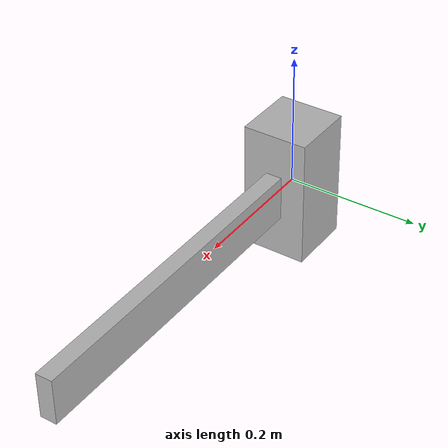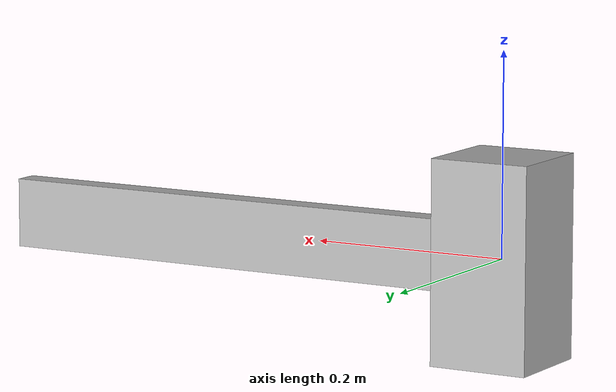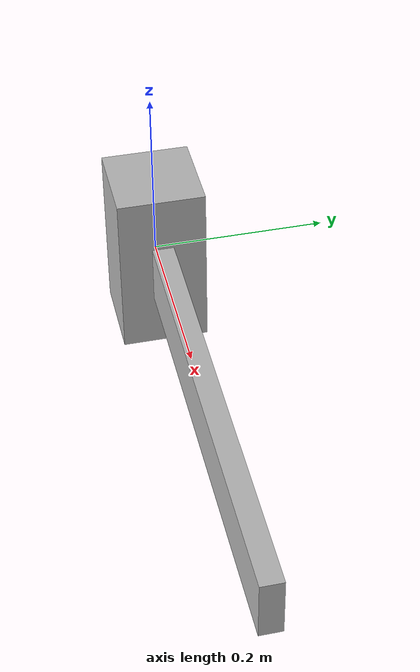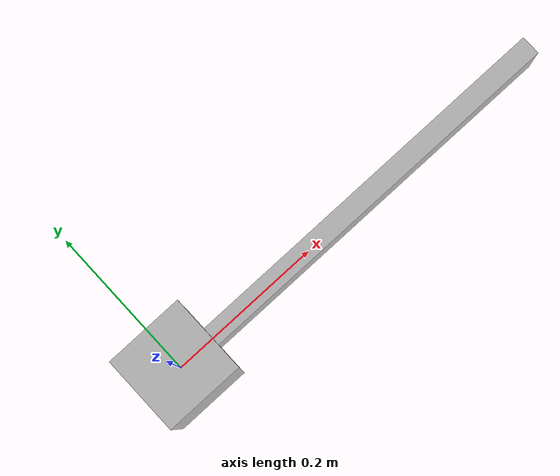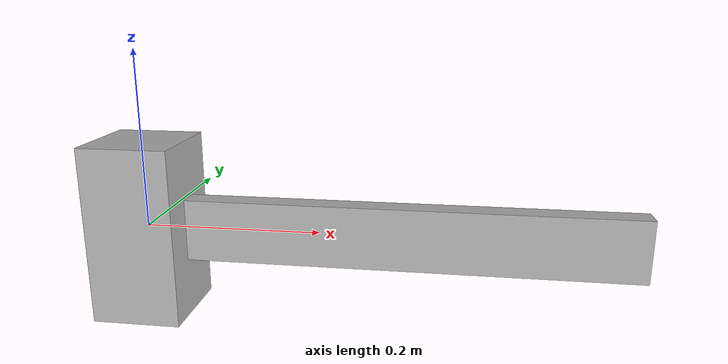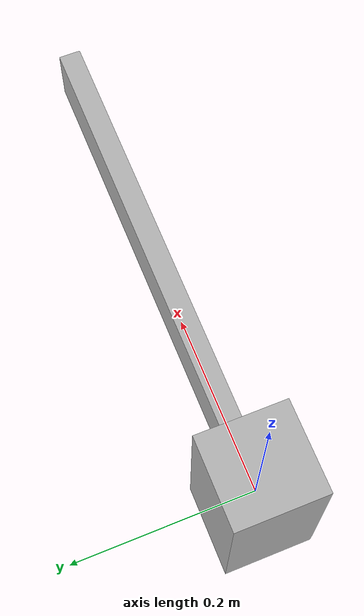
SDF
<?xml version='1.0'?>
<sdf version='1.6'>
  <model name='toll'>
   <link name='toll_base'>
    <visual name='visual'>
      <geometry>
        <box>
          <size>0.1 0.1 0.2</size>
        </box>
      </geometry>
    </visual>
   </link>

  <joint name="toll_joint" type="revolute">
     <parent>toll_base</parent>
     <child>toll_mobile</child>
     <pose frame=''>-0.25 0 0 0 0 0</pose>
     <axis>
      <xyz>0 1 0 </xyz>
      <limit>
        <lower>0</lower>
        <upper>1.57</upper>
        <velocity>1</velocity>
        <effort>5</effort>
      </limit>
      </axis>
    </joint>

   <link name='toll_mobile'>
    <pose frame='toll_base'>0.3 0.0 0 3.14 0 0</pose>
    <visual name='visual'>
      <geometry>
        <box>
          <size>0.5 0.025 0.07</size>
        </box>
      </geometry>
      <material>
        <script>
          <uri>model://create_autorace/toll/materials/scripts</uri>
          <name>warning25</name>
        </script>
      </material>
    </visual>
  <collision name='toll_collision'>
      <geometry>
        <box>
          <size>0.5 0.025 0.07</size>
        </box>
      </geometry>
    </collision>
   </link>

     <joint name="fixed_base" type="revolute">
     <pose frame=''>0 0 -0.1 0 0 0</pose>
     <parent>world</parent>
     <child>toll_base</child>
     <axis>
        <xyz>0 0 1 </xyz>
        <limit>
          <lower>0.0000</lower>
          <upper>0.0000"</upper>
        </limit>
     </axis>
    </joint>

 <plugin name="toll_plugin" filename="libtoll_plugin.so"/>
  </model>

  </sdf>
